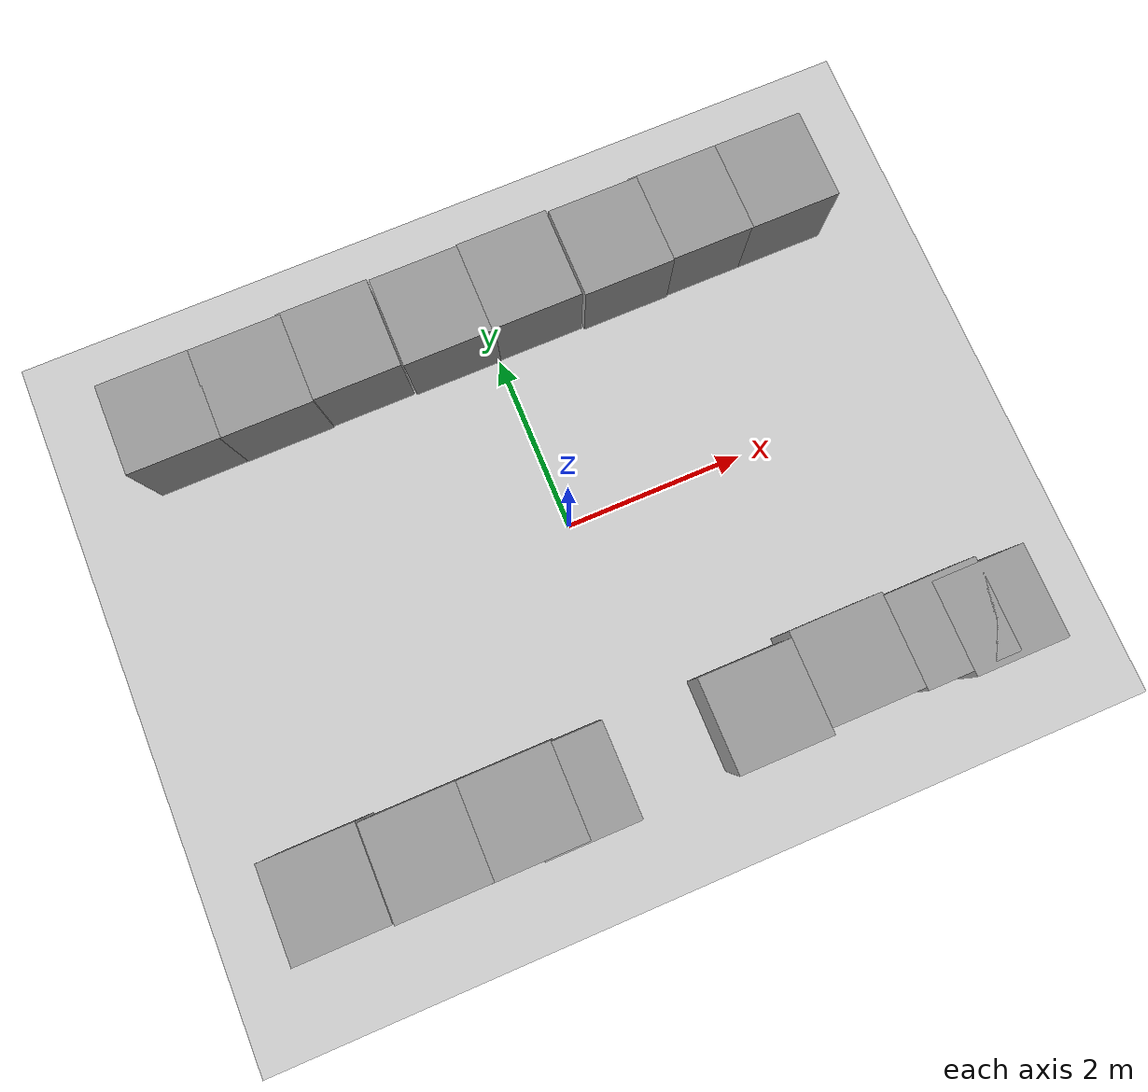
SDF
<sdf version="1.6">
 <world name="default">
  <light name="sun" type="directional">
   <pose>0 0 10 0 -0 0</pose>
   <diffuse>0.8 0.8 0.8 1</diffuse>
   <specular>0.1 0.1 0.1 1</specular>
   <attenuation>
    <range>1000</range>
    <constant>0.9</constant>
    <linear>0.01</linear>
    <quadratic>0.001</quadratic>
   </attenuation>
   <direction>-0.5 0.5 -1</direction>
  </light>
  <model name="ground_plane">
   <static>1</static>
   <link name="link">
    <collision name="collision">
     <geometry><plane><normal>0 0 1</normal><size>100 100</size></plane></geometry>
     <surface><friction><ode><mu>100</mu><mu2>50</mu2></ode></friction></surface>
    </collision>
    <visual name="visual">
     <cast_shadows>0</cast_shadows>
     <geometry><plane><normal>0 0 1</normal><size>100 100</size></plane></geometry>
     <material>
      <script><uri>file://media/materials/scripts/gazebo.material</uri><name>Gazebo/Grey</name></script>
     </material>
    </visual>
   </link>
  </model>
  <gravity>0 0 -9.8</gravity>
  <magnetic_field>6e-06 2.3e-05 -4.2e-05</magnetic_field>
  <atmosphere type="adiabatic"/>
  <physics name="default_physics" default="0" type="ode">
   <max_step_size>0.001</max_step_size>
   <real_time_factor>1</real_time_factor>
   <real_time_update_rate>1000</real_time_update_rate>
  </physics>
  <scene><ambient>0.4 0.4 0.4 1</ambient><background>0.7 0.7 0.7 1</background><shadows>1</shadows></scene>
  <spherical_coordinates>
   <surface_model>EARTH_WGS84</surface_model>
   <latitude_deg>0</latitude_deg>
   <longitude_deg>0</longitude_deg>
   <elevation>0</elevation>
   <heading_deg>0</heading_deg>
  </spherical_coordinates>
  <model name="test_world_0_0">
   <link name="link_1">
    <pose>1.01875 -5.08646 0 0 -0 0</pose>
    <inertial>
     <mass>1</mass>
     <inertia>
      <ixx>0.166667</ixx>
      <ixy>0</ixy>
      <ixz>0</ixz>
      <iyy>0.166667</iyy>
      <iyz>0</iyz>
      <izz>0.166667</izz>
     </inertia>
    </inertial>
    <visual name="visual">
     <geometry><box><size>1 1 1</size></box></geometry>
     <material>
      <lighting>1</lighting>
      <script><uri>file://media/materials/scripts/gazebo.material</uri><name>Gazebo/Grey</name></script>
      <ambient>0.3 0.3 0.3 1</ambient>
      <diffuse>0.7 0.7 0.7 1</diffuse>
      <specular>0.01 0.01 0.01 1</specular>
      <emissive>0 0 0 1</emissive>
     </material>
    </visual>
    <collision name="collision">
     <geometry><box><size>1 1 1</size></box></geometry>
     <surface>
      <friction>
       <ode><mu>1</mu><mu2>1</mu2><fdir1>0 0 0</fdir1><slip1>0</slip1><slip2>0</slip2></ode>
       <torsional>
        <coefficient>1</coefficient>
        <patch_radius>0</patch_radius>
        <surface_radius>0</surface_radius>
        <use_patch_radius>1</use_patch_radius>
        <ode><slip>0</slip></ode>
       </torsional>
      </friction>
      <bounce><restitution_coefficient>0</restitution_coefficient><threshold>1e+06</threshold></bounce>
      <contact>
       <collide_without_contact>0</collide_without_contact>
       <collide_without_contact_bitmask>1</collide_without_contact_bitmask>
       <collide_bitmask>1</collide_bitmask>
       <ode>
        <soft_cfm>0</soft_cfm>
        <soft_erp>0.2</soft_erp>
        <kp>1e+13</kp>
        <kd>1</kd>
        <max_vel>0.01</max_vel>
        <min_depth>0</min_depth>
       </ode>
       <bullet>
        <split_impulse>1</split_impulse>
        <split_impulse_penetration_threshold>-0.01</split_impulse_penetration_threshold>
        <soft_cfm>0</soft_cfm>
        <soft_erp>0.2</soft_erp>
        <kp>1e+13</kp>
        <kd>1</kd>
       </bullet>
      </contact>
     </surface>
    </collision>
   </link>
   <link name="link_1_clone">
    <pose>1.0893 -0.087203 0 0 -0 0</pose>
    <inertial>
     <mass>1</mass>
     <inertia>
      <ixx>0.166667</ixx>
      <ixy>0</ixy>
      <ixz>0</ixz>
      <iyy>0.166667</iyy>
      <iyz>0</iyz>
      <izz>0.166667</izz>
     </inertia>
    </inertial>
    <visual name="visual">
     <geometry><box><size>1 1 1</size></box></geometry>
     <material>
      <lighting>1</lighting>
      <script><uri>file://media/materials/scripts/gazebo.material</uri><name>Gazebo/Grey</name></script>
      <ambient>0.3 0.3 0.3 1</ambient>
      <diffuse>0.7 0.7 0.7 1</diffuse>
      <specular>0.01 0.01 0.01 1</specular>
      <emissive>0 0 0 1</emissive>
      <shader type="pixel"/>
     </material>
    </visual>
    <collision name="collision">
     <geometry><box><size>1 1 1</size></box></geometry>
     <surface>
      <friction>
       <ode><mu>1</mu><mu2>1</mu2><fdir1>0 0 0</fdir1><slip1>0</slip1><slip2>0</slip2></ode>
       <torsional>
        <coefficient>1</coefficient>
        <patch_radius>0</patch_radius>
        <surface_radius>0</surface_radius>
        <use_patch_radius>1</use_patch_radius>
        <ode><slip>0</slip></ode>
       </torsional>
      </friction>
      <bounce><restitution_coefficient>0</restitution_coefficient><threshold>1e+06</threshold></bounce>
      <contact>
       <collide_without_contact>0</collide_without_contact>
       <collide_without_contact_bitmask>1</collide_without_contact_bitmask>
       <collide_bitmask>1</collide_bitmask>
       <ode>
        <soft_cfm>0</soft_cfm>
        <soft_erp>0.2</soft_erp>
        <kp>1e+13</kp>
        <kd>1</kd>
        <max_vel>0.01</max_vel>
        <min_depth>0</min_depth>
       </ode>
       <bullet>
        <split_impulse>1</split_impulse>
        <split_impulse_penetration_threshold>-0.01</split_impulse_penetration_threshold>
        <soft_cfm>0</soft_cfm>
        <soft_erp>0.2</soft_erp>
        <kp>1e+13</kp>
        <kd>1</kd>
       </bullet>
      </contact>
     </surface>
    </collision>
   </link>
   <link name="link_1_clone_0">
    <pose>2.07797 -0.090066 0 0 -0 0</pose>
    <inertial>
     <mass>1</mass>
     <inertia>
      <ixx>0.166667</ixx>
      <ixy>0</ixy>
      <ixz>0</ixz>
      <iyy>0.166667</iyy>
      <iyz>0</iyz>
      <izz>0.166667</izz>
     </inertia>
    </inertial>
    <visual name="visual">
     <geometry><box><size>1 1 1</size></box></geometry>
     <material>
      <lighting>1</lighting>
      <script><uri>file://media/materials/scripts/gazebo.material</uri><name>Gazebo/Grey</name></script>
      <ambient>0.3 0.3 0.3 1</ambient>
      <diffuse>0.7 0.7 0.7 1</diffuse>
      <specular>0.01 0.01 0.01 1</specular>
      <emissive>0 0 0 1</emissive>
      <shader type="pixel"/>
     </material>
    </visual>
    <collision name="collision">
     <geometry><box><size>1 1 1</size></box></geometry>
     <surface>
      <friction>
       <ode><mu>1</mu><mu2>1</mu2><fdir1>0 0 0</fdir1><slip1>0</slip1><slip2>0</slip2></ode>
       <torsional>
        <coefficient>1</coefficient>
        <patch_radius>0</patch_radius>
        <surface_radius>0</surface_radius>
        <use_patch_radius>1</use_patch_radius>
        <ode><slip>0</slip></ode>
       </torsional>
      </friction>
      <bounce><restitution_coefficient>0</restitution_coefficient><threshold>1e+06</threshold></bounce>
      <contact>
       <collide_without_contact>0</collide_without_contact>
       <collide_without_contact_bitmask>1</collide_without_contact_bitmask>
       <collide_bitmask>1</collide_bitmask>
       <ode>
        <soft_cfm>0</soft_cfm>
        <soft_erp>0.2</soft_erp>
        <kp>1e+13</kp>
        <kd>1</kd>
        <max_vel>0.01</max_vel>
        <min_depth>0</min_depth>
       </ode>
       <bullet>
        <split_impulse>1</split_impulse>
        <split_impulse_penetration_threshold>-0.01</split_impulse_penetration_threshold>
        <soft_cfm>0</soft_cfm>
        <soft_erp>0.2</soft_erp>
        <kp>1e+13</kp>
        <kd>1</kd>
       </bullet>
      </contact>
     </surface>
    </collision>
   </link>
   <link name="link_1_clone_0_clone">
    <pose>5.02386 -0.081751 0 0 -0 0</pose>
    <inertial>
     <mass>1</mass>
     <inertia>
      <ixx>0.166667</ixx>
      <ixy>0</ixy>
      <ixz>0</ixz>
      <iyy>0.166667</iyy>
      <iyz>0</iyz>
      <izz>0.166667</izz>
     </inertia>
    </inertial>
    <visual name="visual">
     <geometry><box><size>1 1 1</size></box></geometry>
     <material>
      <lighting>1</lighting>
      <script><uri>file://media/materials/scripts/gazebo.material</uri><name>Gazebo/Grey</name></script>
      <ambient>0.3 0.3 0.3 1</ambient>
      <diffuse>0.7 0.7 0.7 1</diffuse>
      <specular>0.01 0.01 0.01 1</specular>
      <emissive>0 0 0 1</emissive>
      <shader type="pixel"/>
     </material>
    </visual>
    <collision name="collision">
     <geometry><box><size>1 1 1</size></box></geometry>
     <surface>
      <friction>
       <ode><mu>1</mu><mu2>1</mu2><fdir1>0 0 0</fdir1><slip1>0</slip1><slip2>0</slip2></ode>
       <torsional>
        <coefficient>1</coefficient>
        <patch_radius>0</patch_radius>
        <surface_radius>0</surface_radius>
        <use_patch_radius>1</use_patch_radius>
        <ode><slip>0</slip></ode>
       </torsional>
      </friction>
      <bounce><restitution_coefficient>0</restitution_coefficient><threshold>1e+06</threshold></bounce>
      <contact>
       <collide_without_contact>0</collide_without_contact>
       <collide_without_contact_bitmask>1</collide_without_contact_bitmask>
       <collide_bitmask>1</collide_bitmask>
       <ode>
        <soft_cfm>0</soft_cfm>
        <soft_erp>0.2</soft_erp>
        <kp>1e+13</kp>
        <kd>1</kd>
        <max_vel>0.01</max_vel>
        <min_depth>0</min_depth>
       </ode>
       <bullet>
        <split_impulse>1</split_impulse>
        <split_impulse_penetration_threshold>-0.01</split_impulse_penetration_threshold>
        <soft_cfm>0</soft_cfm>
        <soft_erp>0.2</soft_erp>
        <kp>1e+13</kp>
        <kd>1</kd>
       </bullet>
      </contact>
     </surface>
    </collision>
   </link>
   <link name="link_1_clone_0_clone_0">
    <pose>6.04734 -0.10615 0 0 -0 0</pose>
    <inertial>
     <mass>1</mass>
     <inertia>
      <ixx>0.166667</ixx>
      <ixy>0</ixy>
      <ixz>0</ixz>
      <iyy>0.166667</iyy>
      <iyz>0</iyz>
      <izz>0.166667</izz>
     </inertia>
    </inertial>
    <visual name="visual">
     <geometry><box><size>1 1 1</size></box></geometry>
     <material>
      <lighting>1</lighting>
      <script><uri>file://media/materials/scripts/gazebo.material</uri><name>Gazebo/Grey</name></script>
      <ambient>0.3 0.3 0.3 1</ambient>
      <diffuse>0.7 0.7 0.7 1</diffuse>
      <specular>0.01 0.01 0.01 1</specular>
      <emissive>0 0 0 1</emissive>
      <shader type="pixel"/>
     </material>
    </visual>
    <collision name="collision">
     <geometry><box><size>1 1 1</size></box></geometry>
     <surface>
      <friction>
       <ode><mu>1</mu><mu2>1</mu2><fdir1>0 0 0</fdir1><slip1>0</slip1><slip2>0</slip2></ode>
       <torsional>
        <coefficient>1</coefficient>
        <patch_radius>0</patch_radius>
        <surface_radius>0</surface_radius>
        <use_patch_radius>1</use_patch_radius>
        <ode><slip>0</slip></ode>
       </torsional>
      </friction>
      <bounce><restitution_coefficient>0</restitution_coefficient><threshold>1e+06</threshold></bounce>
      <contact>
       <collide_without_contact>0</collide_without_contact>
       <collide_without_contact_bitmask>1</collide_without_contact_bitmask>
       <collide_bitmask>1</collide_bitmask>
       <ode>
        <soft_cfm>0</soft_cfm>
        <soft_erp>0.2</soft_erp>
        <kp>1e+13</kp>
        <kd>1</kd>
        <max_vel>0.01</max_vel>
        <min_depth>0</min_depth>
       </ode>
       <bullet>
        <split_impulse>1</split_impulse>
        <split_impulse_penetration_threshold>-0.01</split_impulse_penetration_threshold>
        <soft_cfm>0</soft_cfm>
        <soft_erp>0.2</soft_erp>
        <kp>1e+13</kp>
        <kd>1</kd>
       </bullet>
      </contact>
     </surface>
    </collision>
   </link>
   <link name="link_1_clone_0_clone_1">
    <pose>6.95164 -0.094635 0 0 -0 0</pose>
    <inertial>
     <mass>1</mass>
     <inertia>
      <ixx>0.166667</ixx>
      <ixy>0</ixy>
      <ixz>0</ixz>
      <iyy>0.166667</iyy>
      <iyz>0</iyz>
      <izz>0.166667</izz>
     </inertia>
    </inertial>
    <visual name="visual">
     <geometry><box><size>1 1 1</size></box></geometry>
     <material>
      <lighting>1</lighting>
      <script><uri>file://media/materials/scripts/gazebo.material</uri><name>Gazebo/Grey</name></script>
      <ambient>0.3 0.3 0.3 1</ambient>
      <diffuse>0.7 0.7 0.7 1</diffuse>
      <specular>0.01 0.01 0.01 1</specular>
      <emissive>0 0 0 1</emissive>
      <shader type="pixel"/>
     </material>
    </visual>
    <collision name="collision">
     <geometry><box><size>1 1 1</size></box></geometry>
     <surface>
      <friction>
       <ode><mu>1</mu><mu2>1</mu2><fdir1>0 0 0</fdir1><slip1>0</slip1><slip2>0</slip2></ode>
       <torsional>
        <coefficient>1</coefficient>
        <patch_radius>0</patch_radius>
        <surface_radius>0</surface_radius>
        <use_patch_radius>1</use_patch_radius>
        <ode><slip>0</slip></ode>
       </torsional>
      </friction>
      <bounce><restitution_coefficient>0</restitution_coefficient><threshold>1e+06</threshold></bounce>
      <contact>
       <collide_without_contact>0</collide_without_contact>
       <collide_without_contact_bitmask>1</collide_without_contact_bitmask>
       <collide_bitmask>1</collide_bitmask>
       <ode>
        <soft_cfm>0</soft_cfm>
        <soft_erp>0.2</soft_erp>
        <kp>1e+13</kp>
        <kd>1</kd>
        <max_vel>0.01</max_vel>
        <min_depth>0</min_depth>
       </ode>
       <bullet>
        <split_impulse>1</split_impulse>
        <split_impulse_penetration_threshold>-0.01</split_impulse_penetration_threshold>
        <soft_cfm>0</soft_cfm>
        <soft_erp>0.2</soft_erp>
        <kp>1e+13</kp>
        <kd>1</kd>
       </bullet>
      </contact>
     </surface>
    </collision>
   </link>
   <link name="link_1_clone_0_clone_2">
    <pose>7.92984 -0.095214 0 0 -0 0</pose>
    <inertial>
     <mass>1</mass>
     <inertia>
      <ixx>0.166667</ixx>
      <ixy>0</ixy>
      <ixz>0</ixz>
      <iyy>0.166667</iyy>
      <iyz>0</iyz>
      <izz>0.166667</izz>
     </inertia>
    </inertial>
    <visual name="visual">
     <geometry><box><size>1 1 1</size></box></geometry>
     <material>
      <lighting>1</lighting>
      <script><uri>file://media/materials/scripts/gazebo.material</uri><name>Gazebo/Grey</name></script>
      <ambient>0.3 0.3 0.3 1</ambient>
      <diffuse>0.7 0.7 0.7 1</diffuse>
      <specular>0.01 0.01 0.01 1</specular>
      <emissive>0 0 0 1</emissive>
      <shader type="pixel"/>
     </material>
    </visual>
    <collision name="collision">
     <geometry><box><size>1 1 1</size></box></geometry>
     <surface>
      <friction>
       <ode><mu>1</mu><mu2>1</mu2><fdir1>0 0 0</fdir1><slip1>0</slip1><slip2>0</slip2></ode>
       <torsional>
        <coefficient>1</coefficient>
        <patch_radius>0</patch_radius>
        <surface_radius>0</surface_radius>
        <use_patch_radius>1</use_patch_radius>
        <ode><slip>0</slip></ode>
       </torsional>
      </friction>
      <bounce><restitution_coefficient>0</restitution_coefficient><threshold>1e+06</threshold></bounce>
      <contact>
       <collide_without_contact>0</collide_without_contact>
       <collide_without_contact_bitmask>1</collide_without_contact_bitmask>
       <collide_bitmask>1</collide_bitmask>
       <ode>
        <soft_cfm>0</soft_cfm>
        <soft_erp>0.2</soft_erp>
        <kp>1e+13</kp>
        <kd>1</kd>
        <max_vel>0.01</max_vel>
        <min_depth>0</min_depth>
       </ode>
       <bullet>
        <split_impulse>1</split_impulse>
        <split_impulse_penetration_threshold>-0.01</split_impulse_penetration_threshold>
        <soft_cfm>0</soft_cfm>
        <soft_erp>0.2</soft_erp>
        <kp>1e+13</kp>
        <kd>1</kd>
       </bullet>
      </contact>
     </surface>
    </collision>
   </link>
   <link name="link_1_clone_0_clone_3">
    <pose>2.02675 -5.10531 0 0 -0 0</pose>
    <inertial>
     <mass>1</mass>
     <inertia>
      <ixx>0.166667</ixx>
      <ixy>0</ixy>
      <ixz>0</ixz>
      <iyy>0.166667</iyy>
      <iyz>0</iyz>
      <izz>0.166667</izz>
     </inertia>
    </inertial>
    <visual name="visual">
     <geometry><box><size>1 1 1</size></box></geometry>
     <material>
      <lighting>1</lighting>
      <script><uri>file://media/materials/scripts/gazebo.material</uri><name>Gazebo/Grey</name></script>
      <ambient>0.3 0.3 0.3 1</ambient>
      <diffuse>0.7 0.7 0.7 1</diffuse>
      <specular>0.01 0.01 0.01 1</specular>
      <emissive>0 0 0 1</emissive>
      <shader type="pixel"/>
     </material>
    </visual>
    <collision name="collision">
     <geometry><box><size>1 1 1</size></box></geometry>
     <surface>
      <friction>
       <ode><mu>1</mu><mu2>1</mu2><fdir1>0 0 0</fdir1><slip1>0</slip1><slip2>0</slip2></ode>
       <torsional>
        <coefficient>1</coefficient>
        <patch_radius>0</patch_radius>
        <surface_radius>0</surface_radius>
        <use_patch_radius>1</use_patch_radius>
        <ode><slip>0</slip></ode>
       </torsional>
      </friction>
      <bounce><restitution_coefficient>0</restitution_coefficient><threshold>1e+06</threshold></bounce>
      <contact>
       <collide_without_contact>0</collide_without_contact>
       <collide_without_contact_bitmask>1</collide_without_contact_bitmask>
       <collide_bitmask>1</collide_bitmask>
       <ode>
        <soft_cfm>0</soft_cfm>
        <soft_erp>0.2</soft_erp>
        <kp>1e+13</kp>
        <kd>1</kd>
        <max_vel>0.01</max_vel>
        <min_depth>0</min_depth>
       </ode>
       <bullet>
        <split_impulse>1</split_impulse>
        <split_impulse_penetration_threshold>-0.01</split_impulse_penetration_threshold>
        <soft_cfm>0</soft_cfm>
        <soft_erp>0.2</soft_erp>
        <kp>1e+13</kp>
        <kd>1</kd>
       </bullet>
      </contact>
     </surface>
    </collision>
   </link>
   <link name="link_1_clone_0_clone_4">
    <pose>3.00157 -5.10699 0 0 -0 0</pose>
    <inertial>
     <mass>1</mass>
     <inertia>
      <ixx>0.166667</ixx>
      <ixy>0</ixy>
      <ixz>0</ixz>
      <iyy>0.166667</iyy>
      <iyz>0</iyz>
      <izz>0.166667</izz>
     </inertia>
    </inertial>
    <visual name="visual">
     <geometry><box><size>1 1 1</size></box></geometry>
     <material>
      <lighting>1</lighting>
      <script><uri>file://media/materials/scripts/gazebo.material</uri><name>Gazebo/Grey</name></script>
      <ambient>0.3 0.3 0.3 1</ambient>
      <diffuse>0.7 0.7 0.7 1</diffuse>
      <specular>0.01 0.01 0.01 1</specular>
      <emissive>0 0 0 1</emissive>
      <shader type="pixel"/>
     </material>
    </visual>
    <collision name="collision">
     <geometry><box><size>1 1 1</size></box></geometry>
     <surface>
      <friction>
       <ode><mu>1</mu><mu2>1</mu2><fdir1>0 0 0</fdir1><slip1>0</slip1><slip2>0</slip2></ode>
       <torsional>
        <coefficient>1</coefficient>
        <patch_radius>0</patch_radius>
        <surface_radius>0</surface_radius>
        <use_patch_radius>1</use_patch_radius>
        <ode><slip>0</slip></ode>
       </torsional>
      </friction>
      <bounce><restitution_coefficient>0</restitution_coefficient><threshold>1e+06</threshold></bounce>
      <contact>
       <collide_without_contact>0</collide_without_contact>
       <collide_without_contact_bitmask>1</collide_without_contact_bitmask>
       <collide_bitmask>1</collide_bitmask>
       <ode>
        <soft_cfm>0</soft_cfm>
        <soft_erp>0.2</soft_erp>
        <kp>1e+13</kp>
        <kd>1</kd>
        <max_vel>0.01</max_vel>
        <min_depth>0</min_depth>
       </ode>
       <bullet>
        <split_impulse>1</split_impulse>
        <split_impulse_penetration_threshold>-0.01</split_impulse_penetration_threshold>
        <soft_cfm>0</soft_cfm>
        <soft_erp>0.2</soft_erp>
        <kp>1e+13</kp>
        <kd>1</kd>
       </bullet>
      </contact>
     </surface>
    </collision>
   </link>
   <link name="link_1_clone_0_clone_5">
    <pose>3.5298 -5.12055 0 0 -0 0</pose>
    <inertial>
     <mass>1</mass>
     <inertia>
      <ixx>0.166667</ixx>
      <ixy>0</ixy>
      <ixz>0</ixz>
      <iyy>0.166667</iyy>
      <iyz>0</iyz>
      <izz>0.166667</izz>
     </inertia>
    </inertial>
    <visual name="visual">
     <geometry><box><size>1 1 1</size></box></geometry>
     <material>
      <lighting>1</lighting>
      <script><uri>file://media/materials/scripts/gazebo.material</uri><name>Gazebo/Grey</name></script>
      <ambient>0.3 0.3 0.3 1</ambient>
      <diffuse>0.7 0.7 0.7 1</diffuse>
      <specular>0.01 0.01 0.01 1</specular>
      <emissive>0 0 0 1</emissive>
      <shader type="pixel"/>
     </material>
    </visual>
    <collision name="collision">
     <geometry><box><size>1 1 1</size></box></geometry>
     <surface>
      <friction>
       <ode><mu>1</mu><mu2>1</mu2><fdir1>0 0 0</fdir1><slip1>0</slip1><slip2>0</slip2></ode>
       <torsional>
        <coefficient>1</coefficient>
        <patch_radius>0</patch_radius>
        <surface_radius>0</surface_radius>
        <use_patch_radius>1</use_patch_radius>
        <ode><slip>0</slip></ode>
       </torsional>
      </friction>
      <bounce><restitution_coefficient>0</restitution_coefficient><threshold>1e+06</threshold></bounce>
      <contact>
       <collide_without_contact>0</collide_without_contact>
       <collide_without_contact_bitmask>1</collide_without_contact_bitmask>
       <collide_bitmask>1</collide_bitmask>
       <ode>
        <soft_cfm>0</soft_cfm>
        <soft_erp>0.2</soft_erp>
        <kp>1e+13</kp>
        <kd>1</kd>
        <max_vel>0.01</max_vel>
        <min_depth>0</min_depth>
       </ode>
       <bullet>
        <split_impulse>1</split_impulse>
        <split_impulse_penetration_threshold>-0.01</split_impulse_penetration_threshold>
        <soft_cfm>0</soft_cfm>
        <soft_erp>0.2</soft_erp>
        <kp>1e+13</kp>
        <kd>1</kd>
       </bullet>
      </contact>
     </surface>
    </collision>
   </link>
   <link name="link_1_clone_0_clone_6">
    <pose>5.5298 -5.1098 0 0 -0 0</pose>
    <inertial>
     <mass>1</mass>
     <inertia>
      <ixx>0.166667</ixx>
      <ixy>0</ixy>
      <ixz>0</ixz>
      <iyy>0.166667</iyy>
      <iyz>0</iyz>
      <izz>0.166667</izz>
     </inertia>
    </inertial>
    <visual name="visual">
     <geometry><box><size>1 1 1</size></box></geometry>
     <material>
      <lighting>1</lighting>
      <script><uri>file://media/materials/scripts/gazebo.material</uri><name>Gazebo/Grey</name></script>
      <ambient>0.3 0.3 0.3 1</ambient>
      <diffuse>0.7 0.7 0.7 1</diffuse>
      <specular>0.01 0.01 0.01 1</specular>
      <emissive>0 0 0 1</emissive>
      <shader type="pixel"/>
     </material>
    </visual>
    <collision name="collision">
     <geometry><box><size>1 1 1</size></box></geometry>
     <surface>
      <friction>
       <ode><mu>1</mu><mu2>1</mu2><fdir1>0 0 0</fdir1><slip1>0</slip1><slip2>0</slip2></ode>
       <torsional>
        <coefficient>1</coefficient>
        <patch_radius>0</patch_radius>
        <surface_radius>0</surface_radius>
        <use_patch_radius>1</use_patch_radius>
        <ode><slip>0</slip></ode>
       </torsional>
      </friction>
      <bounce><restitution_coefficient>0</restitution_coefficient><threshold>1e+06</threshold></bounce>
      <contact>
       <collide_without_contact>0</collide_without_contact>
       <collide_without_contact_bitmask>1</collide_without_contact_bitmask>
       <collide_bitmask>1</collide_bitmask>
       <ode>
        <soft_cfm>0</soft_cfm>
        <soft_erp>0.2</soft_erp>
        <kp>1e+13</kp>
        <kd>1</kd>
        <max_vel>0.01</max_vel>
        <min_depth>0</min_depth>
       </ode>
       <bullet>
        <split_impulse>1</split_impulse>
        <split_impulse_penetration_threshold>-0.01</split_impulse_penetration_threshold>
        <soft_cfm>0</soft_cfm>
        <soft_erp>0.2</soft_erp>
        <kp>1e+13</kp>
        <kd>1</kd>
       </bullet>
      </contact>
     </surface>
    </collision>
   </link>
   <link name="link_1_clone_0_clone_7">
    <pose>6.5298 -5.04171 0 0 -0 0</pose>
    <inertial>
     <mass>1</mass>
     <inertia>
      <ixx>0.166667</ixx>
      <ixy>0</ixy>
      <ixz>0</ixz>
      <iyy>0.166667</iyy>
      <iyz>0</iyz>
      <izz>0.166667</izz>
     </inertia>
    </inertial>
    <visual name="visual">
     <geometry><box><size>1 1 1</size></box></geometry>
     <material>
      <lighting>1</lighting>
      <script><uri>file://media/materials/scripts/gazebo.material</uri><name>Gazebo/Grey</name></script>
      <ambient>0.3 0.3 0.3 1</ambient>
      <diffuse>0.7 0.7 0.7 1</diffuse>
      <specular>0.01 0.01 0.01 1</specular>
      <emissive>0 0 0 1</emissive>
      <shader type="pixel"/>
     </material>
    </visual>
    <collision name="collision">
     <geometry><box><size>1 1 1</size></box></geometry>
     <surface>
      <friction>
       <ode><mu>1</mu><mu2>1</mu2><fdir1>0 0 0</fdir1><slip1>0</slip1><slip2>0</slip2></ode>
       <torsional>
        <coefficient>1</coefficient>
        <patch_radius>0</patch_radius>
        <surface_radius>0</surface_radius>
        <use_patch_radius>1</use_patch_radius>
        <ode><slip>0</slip></ode>
       </torsional>
      </friction>
      <bounce><restitution_coefficient>0</restitution_coefficient><threshold>1e+06</threshold></bounce>
      <contact>
       <collide_without_contact>0</collide_without_contact>
       <collide_without_contact_bitmask>1</collide_without_contact_bitmask>
       <collide_bitmask>1</collide_bitmask>
       <ode>
        <soft_cfm>0</soft_cfm>
        <soft_erp>0.2</soft_erp>
        <kp>1e+13</kp>
        <kd>1</kd>
        <max_vel>0.01</max_vel>
        <min_depth>0</min_depth>
       </ode>
       <bullet>
        <split_impulse>1</split_impulse>
        <split_impulse_penetration_threshold>-0.01</split_impulse_penetration_threshold>
        <soft_cfm>0</soft_cfm>
        <soft_erp>0.2</soft_erp>
        <kp>1e+13</kp>
        <kd>1</kd>
       </bullet>
      </contact>
     </surface>
    </collision>
   </link>
   <link name="link_1_clone_0_clone_8">
    <pose>7.5298 -5.07871 0 0 -0 0</pose>
    <inertial>
     <mass>1</mass>
     <inertia>
      <ixx>0.166667</ixx>
      <ixy>0</ixy>
      <ixz>0</ixz>
      <iyy>0.166667</iyy>
      <iyz>0</iyz>
      <izz>0.166667</izz>
     </inertia>
    </inertial>
    <visual name="visual">
     <geometry><box><size>1 1 1</size></box></geometry>
     <material>
      <lighting>1</lighting>
      <script><uri>file://media/materials/scripts/gazebo.material</uri><name>Gazebo/Grey</name></script>
      <ambient>0.3 0.3 0.3 1</ambient>
      <diffuse>0.7 0.7 0.7 1</diffuse>
      <specular>0.01 0.01 0.01 1</specular>
      <emissive>0 0 0 1</emissive>
      <shader type="pixel"/>
     </material>
    </visual>
    <collision name="collision">
     <geometry><box><size>1 1 1</size></box></geometry>
     <surface>
      <friction>
       <ode><mu>1</mu><mu2>1</mu2><fdir1>0 0 0</fdir1><slip1>0</slip1><slip2>0</slip2></ode>
       <torsional>
        <coefficient>1</coefficient>
        <patch_radius>0</patch_radius>
        <surface_radius>0</surface_radius>
        <use_patch_radius>1</use_patch_radius>
        <ode><slip>0</slip></ode>
       </torsional>
      </friction>
      <bounce><restitution_coefficient>0</restitution_coefficient><threshold>1e+06</threshold></bounce>
      <contact>
       <collide_without_contact>0</collide_without_contact>
       <collide_without_contact_bitmask>1</collide_without_contact_bitmask>
       <collide_bitmask>1</collide_bitmask>
       <ode>
        <soft_cfm>0</soft_cfm>
        <soft_erp>0.2</soft_erp>
        <kp>1e+13</kp>
        <kd>1</kd>
        <max_vel>0.01</max_vel>
        <min_depth>0</min_depth>
       </ode>
       <bullet>
        <split_impulse>1</split_impulse>
        <split_impulse_penetration_threshold>-0.01</split_impulse_penetration_threshold>
        <soft_cfm>0</soft_cfm>
        <soft_erp>0.2</soft_erp>
        <kp>1e+13</kp>
        <kd>1</kd>
       </bullet>
      </contact>
     </surface>
    </collision>
   </link>
   <link name="link_1_clone_0_clone_9">
    <pose>8.02287 -5.1404 0 0 -0 0</pose>
    <inertial>
     <mass>1</mass>
     <inertia>
      <ixx>0.166667</ixx>
      <ixy>0</ixy>
      <ixz>0</ixz>
      <iyy>0.166667</iyy>
      <iyz>0</iyz>
      <izz>0.166667</izz>
     </inertia>
    </inertial>
    <visual name="visual">
     <geometry><box><size>1 1 1</size></box></geometry>
     <material>
      <lighting>1</lighting>
      <script><uri>file://media/materials/scripts/gazebo.material</uri><name>Gazebo/Grey</name></script>
      <ambient>0.3 0.3 0.3 1</ambient>
      <diffuse>0.7 0.7 0.7 1</diffuse>
      <specular>0.01 0.01 0.01 1</specular>
      <emissive>0 0 0 1</emissive>
      <shader type="pixel"/>
     </material>
    </visual>
    <collision name="collision">
     <geometry><box><size>1 1 1</size></box></geometry>
     <surface>
      <friction>
       <ode><mu>1</mu><mu2>1</mu2><fdir1>0 0 0</fdir1><slip1>0</slip1><slip2>0</slip2></ode>
       <torsional>
        <coefficient>1</coefficient>
        <patch_radius>0</patch_radius>
        <surface_radius>0</surface_radius>
        <use_patch_radius>1</use_patch_radius>
        <ode><slip>0</slip></ode>
       </torsional>
      </friction>
      <bounce><restitution_coefficient>0</restitution_coefficient><threshold>1e+06</threshold></bounce>
      <contact>
       <collide_without_contact>0</collide_without_contact>
       <collide_without_contact_bitmask>1</collide_without_contact_bitmask>
       <collide_bitmask>1</collide_bitmask>
       <ode>
        <soft_cfm>0</soft_cfm>
        <soft_erp>0.2</soft_erp>
        <kp>1e+13</kp>
        <kd>1</kd>
        <max_vel>0.01</max_vel>
        <min_depth>0</min_depth>
       </ode>
       <bullet>
        <split_impulse>1</split_impulse>
        <split_impulse_penetration_threshold>-0.01</split_impulse_penetration_threshold>
        <soft_cfm>0</soft_cfm>
        <soft_erp>0.2</soft_erp>
        <kp>1e+13</kp>
        <kd>1</kd>
       </bullet>
      </contact>
     </surface>
    </collision>
   </link>
   <link name="link_1_clone_1">
    <pose>3.02989 -0.076805 0 0 -0 0</pose>
    <inertial>
     <mass>1</mass>
     <inertia>
      <ixx>0.166667</ixx>
      <ixy>0</ixy>
      <ixz>0</ixz>
      <iyy>0.166667</iyy>
      <iyz>0</iyz>
      <izz>0.166667</izz>
     </inertia>
    </inertial>
    <visual name="visual">
     <geometry><box><size>1 1 1</size></box></geometry>
     <material>
      <lighting>1</lighting>
      <script><uri>file://media/materials/scripts/gazebo.material</uri><name>Gazebo/Grey</name></script>
      <ambient>0.3 0.3 0.3 1</ambient>
      <diffuse>0.7 0.7 0.7 1</diffuse>
      <specular>0.01 0.01 0.01 1</specular>
      <emissive>0 0 0 1</emissive>
      <shader type="pixel"/>
     </material>
    </visual>
    <collision name="collision">
     <geometry><box><size>1 1 1</size></box></geometry>
     <surface>
      <friction>
       <ode><mu>1</mu><mu2>1</mu2><fdir1>0 0 0</fdir1><slip1>0</slip1><slip2>0</slip2></ode>
       <torsional>
        <coefficient>1</coefficient>
        <patch_radius>0</patch_radius>
        <surface_radius>0</surface_radius>
        <use_patch_radius>1</use_patch_radius>
        <ode><slip>0</slip></ode>
       </torsional>
      </friction>
      <bounce><restitution_coefficient>0</restitution_coefficient><threshold>1e+06</threshold></bounce>
      <contact>
       <collide_without_contact>0</collide_without_contact>
       <collide_without_contact_bitmask>1</collide_without_contact_bitmask>
       <collide_bitmask>1</collide_bitmask>
       <ode>
        <soft_cfm>0</soft_cfm>
        <soft_erp>0.2</soft_erp>
        <kp>1e+13</kp>
        <kd>1</kd>
        <max_vel>0.01</max_vel>
        <min_depth>0</min_depth>
       </ode>
       <bullet>
        <split_impulse>1</split_impulse>
        <split_impulse_penetration_threshold>-0.01</split_impulse_penetration_threshold>
        <soft_cfm>0</soft_cfm>
        <soft_erp>0.2</soft_erp>
        <kp>1e+13</kp>
        <kd>1</kd>
       </bullet>
      </contact>
     </surface>
    </collision>
   </link>
   <link name="link_1_clone_1_clone">
    <pose>4.05 -0.093434 0 0 -0 0</pose>
    <inertial>
     <mass>1</mass>
     <inertia>
      <ixx>0.166667</ixx>
      <ixy>0</ixy>
      <ixz>0</ixz>
      <iyy>0.166667</iyy>
      <iyz>0</iyz>
      <izz>0.166667</izz>
     </inertia>
    </inertial>
    <visual name="visual">
     <geometry><box><size>1 1 1</size></box></geometry>
     <material>
      <lighting>1</lighting>
      <script><uri>file://media/materials/scripts/gazebo.material</uri><name>Gazebo/Grey</name></script>
      <ambient>0.3 0.3 0.3 1</ambient>
      <diffuse>0.7 0.7 0.7 1</diffuse>
      <specular>0.01 0.01 0.01 1</specular>
      <emissive>0 0 0 1</emissive>
      <shader type="pixel"/>
     </material>
    </visual>
    <collision name="collision">
     <geometry><box><size>1 1 1</size></box></geometry>
     <surface>
      <friction>
       <ode><mu>1</mu><mu2>1</mu2><fdir1>0 0 0</fdir1><slip1>0</slip1><slip2>0</slip2></ode>
       <torsional>
        <coefficient>1</coefficient>
        <patch_radius>0</patch_radius>
        <surface_radius>0</surface_radius>
        <use_patch_radius>1</use_patch_radius>
        <ode><slip>0</slip></ode>
       </torsional>
      </friction>
      <bounce><restitution_coefficient>0</restitution_coefficient><threshold>1e+06</threshold></bounce>
      <contact>
       <collide_without_contact>0</collide_without_contact>
       <collide_without_contact_bitmask>1</collide_without_contact_bitmask>
       <collide_bitmask>1</collide_bitmask>
       <ode>
        <soft_cfm>0</soft_cfm>
        <soft_erp>0.2</soft_erp>
        <kp>1e+13</kp>
        <kd>1</kd>
        <max_vel>0.01</max_vel>
        <min_depth>0</min_depth>
       </ode>
       <bullet>
        <split_impulse>1</split_impulse>
        <split_impulse_penetration_threshold>-0.01</split_impulse_penetration_threshold>
        <soft_cfm>0</soft_cfm>
        <soft_erp>0.2</soft_erp>
        <kp>1e+13</kp>
        <kd>1</kd>
       </bullet>
      </contact>
     </surface>
    </collision>
   </link>
   <static>0</static>
   <pose>-4.5298 2.60221 0.5 0 -0 0</pose>
  </model>
 </world>
</sdf>
